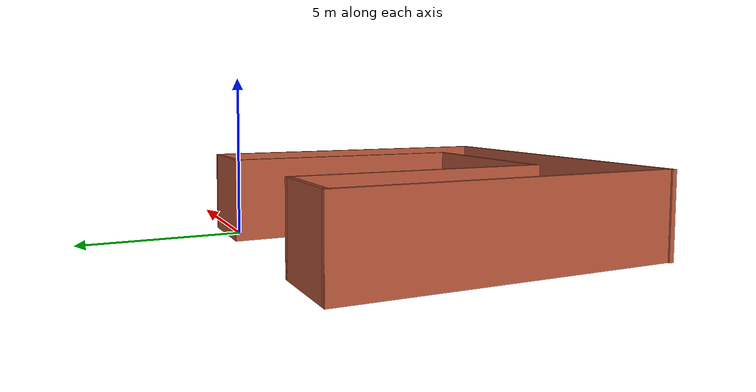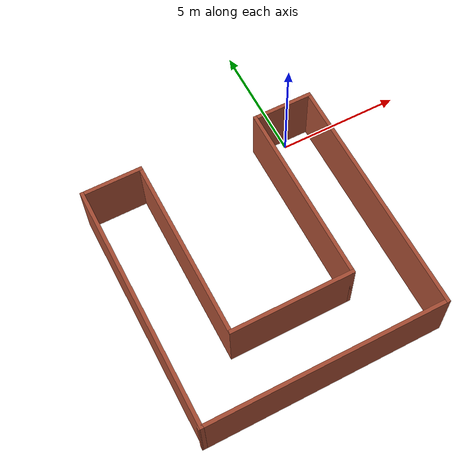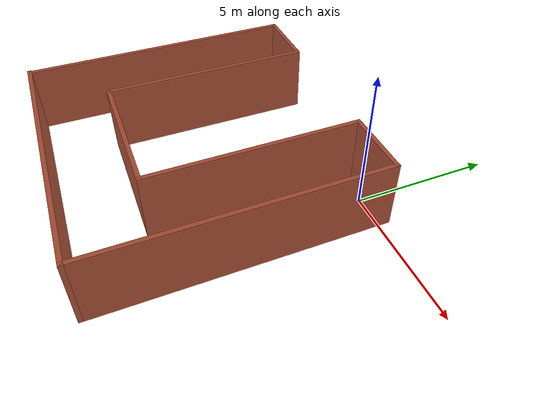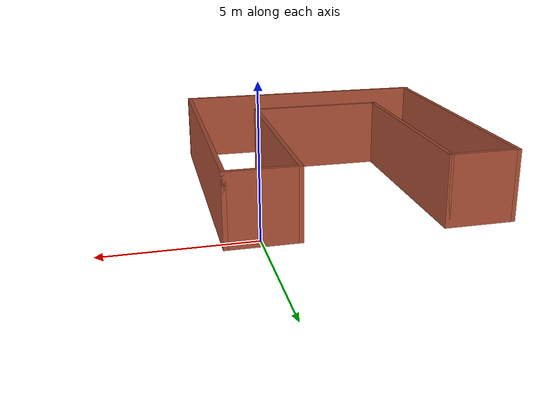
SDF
<?xml version='1.0'?>
<sdf version='1.6'>
  <model name='oficina'>
    <pose frame=''>-3.63747 -4.56791 0 0 -0 0</pose>
    <link name='Wall_10'>
      <collision name='Wall_10_Collision'>
        <geometry>
          <box>
            <size>5 0.15 2.5</size>
          </box>
        </geometry>
        <pose frame=''>0 0 1.25 0 -0 0</pose>
      </collision>
      <visual name='Wall_10_Visual'>
        <pose frame=''>0 0 1.25 0 -0 0</pose>
        <geometry>
          <box>
            <size>5 0.15 2.5</size>
          </box>
        </geometry>
        <material>
          <script>
            <uri>file://media/materials/scripts/gazebo.material</uri>
            <name>Gazebo/Bricks</name>
          </script>
          <ambient>1 1 1 1</ambient>
        </material>
      </visual>
      <pose frame=''>0.025 -2.425 0 0 -0 0</pose>
    </link>
    <link name='Wall_11'>
      <collision name='Wall_11_Collision'>
        <geometry>
          <box>
            <size>7.5 0.15 2.5</size>
          </box>
        </geometry>
        <pose frame=''>0 0 1.25 0 -0 0</pose>
      </collision>
      <visual name='Wall_11_Visual'>
        <pose frame=''>0 0 1.25 0 -0 0</pose>
        <geometry>
          <box>
            <size>7.5 0.15 2.5</size>
          </box>
        </geometry>
        <material>
          <script>
            <uri>file://media/materials/scripts/gazebo.material</uri>
            <name>Gazebo/Bricks</name>
          </script>
          <ambient>1 1 1 1</ambient>
        </material>
      </visual>
      <pose frame=''>2.45 1.25 0 0 -0 1.5708</pose>
    </link>
    <link name='Wall_12'>
      <collision name='Wall_12_Collision'>
        <geometry>
          <box>
            <size>2.5 0.15 2.5</size>
          </box>
        </geometry>
        <pose frame=''>0 0 1.25 0 -0 0</pose>
      </collision>
      <visual name='Wall_12_Visual'>
        <pose frame=''>0 0 1.25 0 -0 0</pose>
        <geometry>
          <box>
            <size>2.5 0.15 2.5</size>
          </box>
        </geometry>
        <material>
          <script>
            <uri>file://media/materials/scripts/gazebo.material</uri>
            <name>Gazebo/Bricks</name>
          </script>
          <ambient>1 1 1 1</ambient>
        </material>
      </visual>
      <pose frame=''>3.625 4.925 0 0 -0 0</pose>
    </link>
    <link name='Wall_13'>
      <collision name='Wall_13_Collision'>
        <geometry>
          <box>
            <size>10 0.15 2.5</size>
          </box>
        </geometry>
        <pose frame=''>0 0 1.25 0 -0 0</pose>
      </collision>
      <visual name='Wall_13_Visual'>
        <pose frame=''>0 0 1.25 0 -0 0</pose>
        <geometry>
          <box>
            <size>10 0.15 2.5</size>
          </box>
        </geometry>
        <material>
          <script>
            <uri>file://media/materials/scripts/gazebo.material</uri>
            <name>Gazebo/Bricks</name>
          </script>
          <ambient>1 1 1 1</ambient>
        </material>
      </visual>
      <pose frame=''>4.8 0 0 0 0 -1.5708</pose>
    </link>
    <link name='Wall_14'>
      <collision name='Wall_14_Collision'>
        <geometry>
          <box>
            <size>9.75 0.15 2.5</size>
          </box>
        </geometry>
        <pose frame=''>0 0 1.25 0 -0 0</pose>
      </collision>
      <visual name='Wall_14_Visual'>
        <pose frame=''>0 0 1.25 0 -0 0</pose>
        <geometry>
          <box>
            <size>9.75 0.15 2.5</size>
          </box>
        </geometry>
        <material>
          <script>
            <uri>file://media/materials/scripts/gazebo.material</uri>
            <name>Gazebo/Bricks</name>
          </script>
          <ambient>1 1 1 1</ambient>
        </material>
      </visual>
      <pose frame=''>0 -4.925 0 0 -0 3.14159</pose>
    </link>
    <link name='Wall_7'>
      <collision name='Wall_7_Collision'>
        <geometry>
          <box>
            <size>10 0.15 2.5</size>
          </box>
        </geometry>
        <pose frame=''>0 0 1.25 0 -0 0</pose>
      </collision>
      <visual name='Wall_7_Visual'>
        <pose frame=''>0 0 1.25 0 -0 0</pose>
        <geometry>
          <box>
            <size>10 0.15 2.5</size>
          </box>
        </geometry>
        <material>
          <script>
            <uri>file://media/materials/scripts/gazebo.material</uri>
            <name>Gazebo/Bricks</name>
          </script>
          <ambient>1 1 1 1</ambient>
        </material>
      </visual>
      <pose frame=''>-4.75 0 0 0 -0 1.5708</pose>
    </link>
    <link name='Wall_8'>
      <collision name='Wall_8_Collision'>
        <geometry>
          <box>
            <size>2.5 0.15 2.5</size>
          </box>
        </geometry>
        <pose frame=''>0 0 1.25 0 -0 0</pose>
      </collision>
      <visual name='Wall_8_Visual'>
        <pose frame=''>0 0 1.25 0 -0 0</pose>
        <geometry>
          <box>
            <size>2.5 0.15 2.5</size>
          </box>
        </geometry>
        <material>
          <script>
            <uri>file://media/materials/scripts/gazebo.material</uri>
            <name>Gazebo/Bricks</name>
          </script>
          <ambient>1 1 1 1</ambient>
        </material>
      </visual>
      <pose frame=''>-3.575 4.925 0 0 -0 0</pose>
    </link>
    <link name='Wall_9'>
      <collision name='Wall_9_Collision'>
        <geometry>
          <box>
            <size>7.5 0.15 2.5</size>
          </box>
        </geometry>
        <pose frame=''>0 0 1.25 0 -0 0</pose>
      </collision>
      <visual name='Wall_9_Visual'>
        <pose frame=''>0 0 1.25 0 -0 0</pose>
        <geometry>
          <box>
            <size>7.5 0.15 2.5</size>
          </box>
        </geometry>
        <material>
          <script>
            <uri>file://media/materials/scripts/gazebo.material</uri>
            <name>Gazebo/Bricks</name>
          </script>
          <ambient>1 1 1 1</ambient>
        </material>
      </visual>
      <pose frame=''>-2.4 1.25 0 0 0 -1.5708</pose>
    </link>
    <static>1</static>
  </model>
</sdf>
